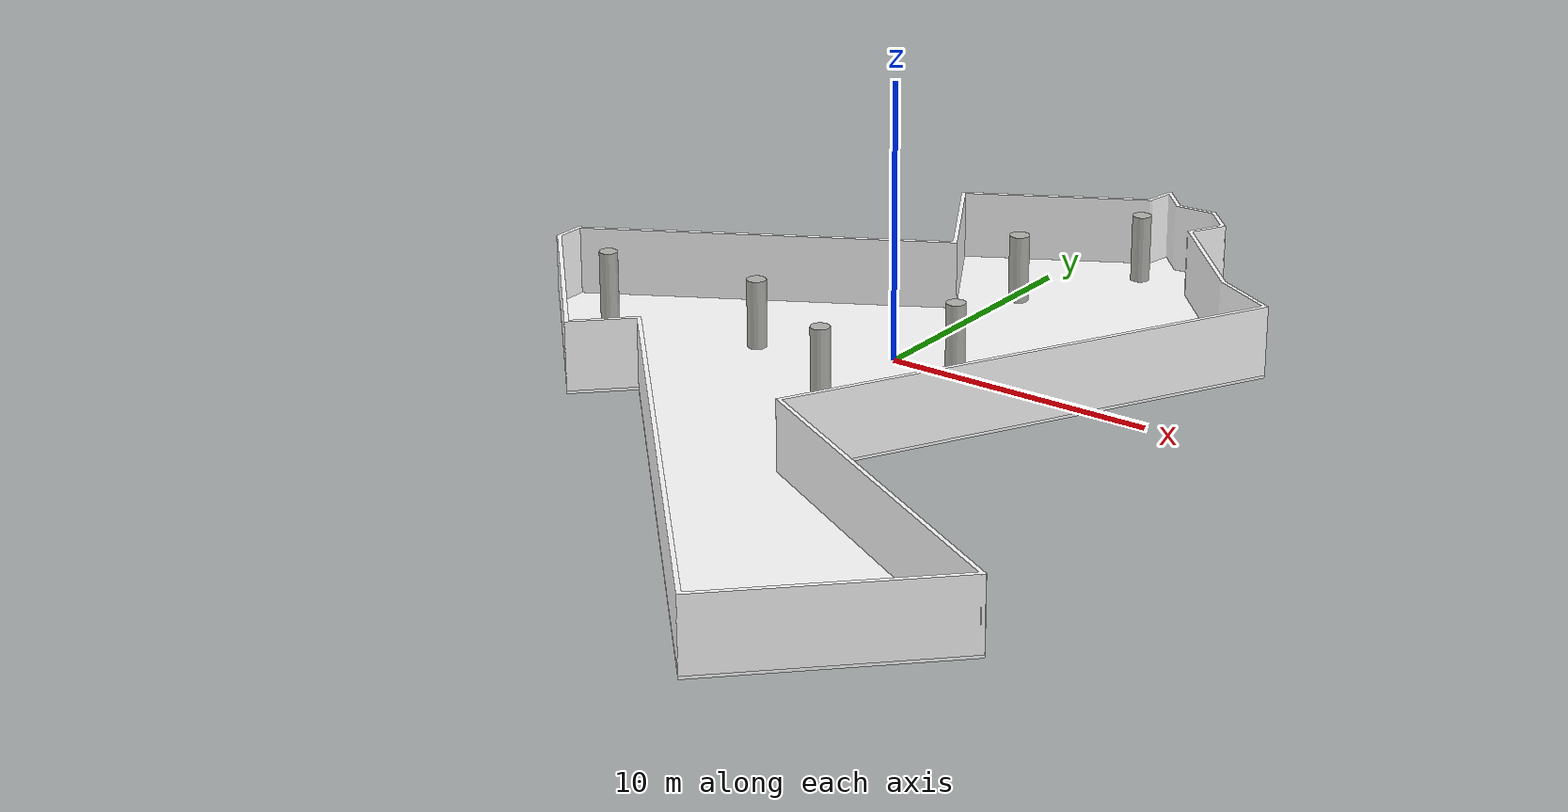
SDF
<?xml version="1.0"?>
<sdf version="1.9">
  <model name="indoor_clean_less_dense">
    <static>true</static>
    <link name="link">
      <collision name="collision">
        <geometry>
          <mesh><uri>meshes/indoor_clean_less_dense_collision.stl</uri></mesh>
        </geometry>
      </collision>
      <visual name="visual_suelo">
        <geometry>
          <mesh><uri>meshes/indoor_clean_less_dense_suelo.obj</uri></mesh>
        </geometry>
        <material>
          <ambient>0.42 0.30 0.24 1</ambient>
          <diffuse>1.0 1.0 1.0 1</diffuse>
          <specular>0.02 0.02 0.02 1</specular>
          <pbr>
            <metal>
              <albedo_map>model://indoor_clean_less_dense/meshes/baldosa.png</albedo_map>
              <metalness>0.0</metalness>
              <roughness>0.9</roughness>
            </metal>
          </pbr>
        </material>
      </visual>
      <visual name="visual_muros">
        <geometry>
          <mesh><uri>meshes/indoor_clean_less_dense_muros.obj</uri></mesh>
        </geometry>
        <material>
          <ambient>0.55 0.32 0.22 1</ambient>
          <diffuse>1.0 1.0 1.0 1</diffuse>
          <specular>0.03 0.03 0.03 1</specular>
          <pbr>
            <metal>
              <albedo_map>model://indoor_clean_less_dense/meshes/ladrillo.png</albedo_map>
              <metalness>0.0</metalness>
              <roughness>0.95</roughness>
            </metal>
          </pbr>
        </material>
      </visual>
      <visual name="visual_columnas">
        <geometry>
          <mesh><uri>meshes/indoor_clean_less_dense_columnas.stl</uri></mesh>
        </geometry>
        <material>
          <ambient>0.42 0.42 0.41 1</ambient>
          <diffuse>0.70 0.70 0.68 1</diffuse>
        </material>
      </visual>
    </link>
  </model>
</sdf>
